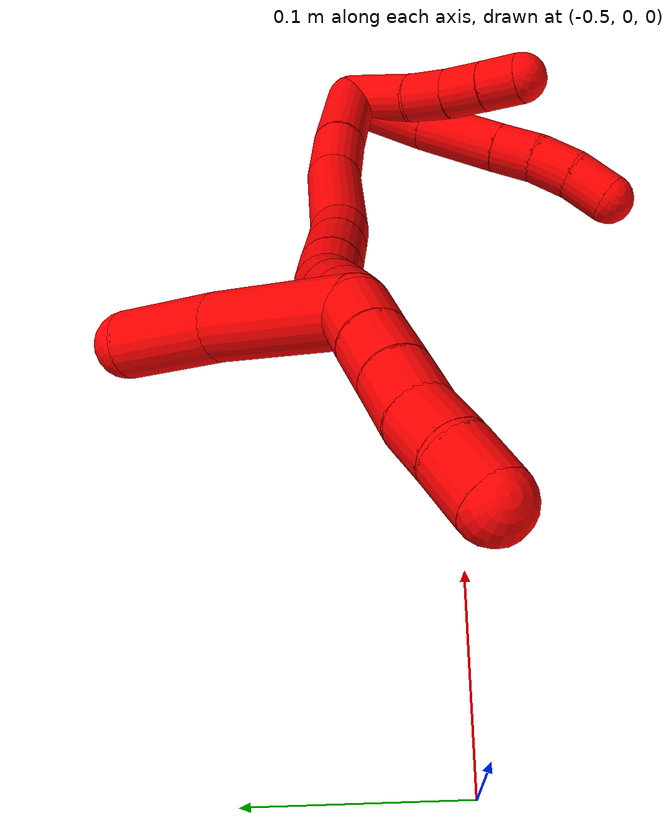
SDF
<sdf version="1.7">
 <world name="default">
  <model name="2">
   <static>0</static>
   <link name="2">
    <collision name="collision-cylinder-e_1_2_8">
     <pose>-0.009734 -0.018061 0.00874 1.12007 -0.451677 -0.286148</pose>
     <geometry><cylinder><radius>0.0125</radius><length>0.044602</length></cylinder></geometry>
     <surface>
      <friction><ode><mu>1.16</mu><mu2>1.16</mu2><slip1>0</slip1><slip2>0</slip2></ode></friction>
      <contact><ode><kp>1e+06</kp><kd>1</kd><max_vel>0</max_vel><min_depth>0.001</min_depth></ode></contact>
     </surface>
    </collision>
    <visual name="visual-cylinder-e_1_2_8">
     <pose>-0.009734 -0.018061 0.00874 1.12007 -0.451677 -0.286148</pose>
     <geometry><cylinder><radius>0.0125</radius><length>0.044602</length></cylinder></geometry>
     <material><ambient>1 0 0 1</ambient></material>
    </visual>
    <collision name="collision-cylinder-e_2_8_9">
     <pose>-0.028168 -0.052497 0.027318 1.02984 -0.427371 -0.244349</pose>
     <geometry><cylinder><radius>0.0125</radius><length>0.041982</length></cylinder></geometry>
     <surface>
      <friction><ode><mu>1.16</mu><mu2>1.16</mu2><slip1>0</slip1><slip2>0</slip2></ode></friction>
      <contact><ode><kp>1e+06</kp><kd>1</kd><max_vel>0</max_vel><min_depth>0.001</min_depth></ode></contact>
     </surface>
    </collision>
    <visual name="visual-cylinder-e_2_8_9">
     <pose>-0.028168 -0.052497 0.027318 1.02984 -0.427371 -0.244349</pose>
     <geometry><cylinder><radius>0.0125</radius><length>0.041982</length></cylinder></geometry>
     <material><ambient>1 0 0 1</ambient></material>
    </visual>
    <collision name="collision-cylinder-e_3_9_10">
     <pose>-0.040953 -0.077201 0.042034 1.0409 -0.400299 -0.231511</pose>
     <geometry><cylinder><radius>0.0125</radius><length>0.020961</length></cylinder></geometry>
     <surface>
      <friction><ode><mu>1.16</mu><mu2>1.16</mu2><slip1>0</slip1><slip2>0</slip2></ode></friction>
      <contact><ode><kp>1e+06</kp><kd>1</kd><max_vel>0</max_vel><min_depth>0.001</min_depth></ode></contact>
     </surface>
    </collision>
    <visual name="visual-cylinder-e_3_9_10">
     <pose>-0.040953 -0.077201 0.042034 1.0409 -0.400299 -0.231511</pose>
     <geometry><cylinder><radius>0.0125</radius><length>0.020961</length></cylinder></geometry>
     <material><ambient>1 0 0 1</ambient></material>
    </visual>
    <collision name="collision-cylinder-e_4_10_11">
     <pose>-0.050483 -0.093662 0.051038 1.10127 -0.538372 -0.335586</pose>
     <geometry><cylinder><radius>0.0125</radius><length>0.021243</length></cylinder></geometry>
     <surface>
      <friction><ode><mu>1.16</mu><mu2>1.16</mu2><slip1>0</slip1><slip2>0</slip2></ode></friction>
      <contact><ode><kp>1e+06</kp><kd>1</kd><max_vel>0</max_vel><min_depth>0.001</min_depth></ode></contact>
     </surface>
    </collision>
    <visual name="visual-cylinder-e_4_10_11">
     <pose>-0.050483 -0.093662 0.051038 1.10127 -0.538372 -0.335586</pose>
     <geometry><cylinder><radius>0.0125</radius><length>0.021243</length></cylinder></geometry>
     <material><ambient>1 0 0 1</ambient></material>
    </visual>
    <collision name="collision-cylinder-e_5_11_6">
     <pose>-0.062657 -0.109394 0.058239 1.18639 -0.687174 -0.473381</pose>
     <geometry><cylinder><radius>0.0125</radius><length>0.021211</length></cylinder></geometry>
     <surface>
      <friction><ode><mu>1.16</mu><mu2>1.16</mu2><slip1>0</slip1><slip2>0</slip2></ode></friction>
      <contact><ode><kp>1e+06</kp><kd>1</kd><max_vel>0</max_vel><min_depth>0.001</min_depth></ode></contact>
     </surface>
    </collision>
    <visual name="visual-cylinder-e_5_11_6">
     <pose>-0.062657 -0.109394 0.058239 1.18639 -0.687174 -0.473381</pose>
     <geometry><cylinder><radius>0.0125</radius><length>0.021211</length></cylinder></geometry>
     <material><ambient>1 0 0 1</ambient></material>
    </visual>
    <collision name="collision-cylinder-e_1_2_12">
     <pose>-0.004739 -0.012997 0.013399 0.770163 -0.248598 -0.101197</pose>
     <geometry><cylinder><radius>0.0125</radius><length>0.038518</length></cylinder></geometry>
     <surface>
      <friction><ode><mu>1.16</mu><mu2>1.16</mu2><slip1>0</slip1><slip2>0</slip2></ode></friction>
      <contact><ode><kp>1e+06</kp><kd>1</kd><max_vel>0</max_vel><min_depth>0.001</min_depth></ode></contact>
     </surface>
    </collision>
    <visual name="visual-cylinder-e_1_2_12">
     <pose>-0.004739 -0.012997 0.013399 0.770163 -0.248598 -0.101197</pose>
     <geometry><cylinder><radius>0.0125</radius><length>0.038518</length></cylinder></geometry>
     <material><ambient>1 0 0 1</ambient></material>
    </visual>
    <collision name="collision-cylinder-e_2_12_13">
     <pose>-0.010699 -0.033832 0.03396 0.830488 -0.114551 -0.050548</pose>
     <geometry><cylinder><radius>0.0125</radius><length>0.021375</length></cylinder></geometry>
     <surface>
      <friction><ode><mu>1.16</mu><mu2>1.16</mu2><slip1>0</slip1><slip2>0</slip2></ode></friction>
      <contact><ode><kp>1e+06</kp><kd>1</kd><max_vel>0</max_vel><min_depth>0.001</min_depth></ode></contact>
     </surface>
    </collision>
    <visual name="visual-cylinder-e_2_12_13">
     <pose>-0.010699 -0.033832 0.03396 0.830488 -0.114551 -0.050548</pose>
     <geometry><cylinder><radius>0.0125</radius><length>0.021375</length></cylinder></geometry>
     <material><ambient>1 0 0 1</ambient></material>
    </visual>
    <collision name="collision-cylinder-e_3_13_14">
     <pose>-0.012479 -0.048842 0.048141 0.79612 -0.055626 -0.023396</pose>
     <geometry><cylinder><radius>0.0125</radius><length>0.0201</length></cylinder></geometry>
     <surface>
      <friction><ode><mu>1.16</mu><mu2>1.16</mu2><slip1>0</slip1><slip2>0</slip2></ode></friction>
      <contact><ode><kp>1e+06</kp><kd>1</kd><max_vel>0</max_vel><min_depth>0.001</min_depth></ode></contact>
     </surface>
    </collision>
    <visual name="visual-cylinder-e_3_13_14">
     <pose>-0.012479 -0.048842 0.048141 0.79612 -0.055626 -0.023396</pose>
     <geometry><cylinder><radius>0.0125</radius><length>0.0201</length></cylinder></geometry>
     <material><ambient>1 0 0 1</ambient></material>
    </visual>
    <collision name="collision-cylinder-e_4_14_5">
     <pose>-0.013308 -0.06332 0.061987 0.819313 -0.027 -0.011724</pose>
     <geometry><cylinder><radius>0.0125</radius><length>0.020006</length></cylinder></geometry>
     <surface>
      <friction><ode><mu>1.16</mu><mu2>1.16</mu2><slip1>0</slip1><slip2>0</slip2></ode></friction>
      <contact><ode><kp>1e+06</kp><kd>1</kd><max_vel>0</max_vel><min_depth>0.001</min_depth></ode></contact>
     </surface>
    </collision>
    <visual name="visual-cylinder-e_4_14_5">
     <pose>-0.013308 -0.06332 0.061987 0.819313 -0.027 -0.011724</pose>
     <geometry><cylinder><radius>0.0125</radius><length>0.020006</length></cylinder></geometry>
     <material><ambient>1 0 0 1</ambient></material>
    </visual>
    <collision name="collision-cylinder-e_1_2_15">
     <pose>-0.022505 0.007185 0.019013 -0.361292 -0.836229 0.161941</pose>
     <geometry><cylinder><radius>0.0125</radius><length>0.060649</length></cylinder></geometry>
     <surface>
      <friction><ode><mu>1.16</mu><mu2>1.16</mu2><slip1>0</slip1><slip2>0</slip2></ode></friction>
      <contact><ode><kp>1e+06</kp><kd>1</kd><max_vel>0</max_vel><min_depth>0.001</min_depth></ode></contact>
     </surface>
    </collision>
    <visual name="visual-cylinder-e_1_2_15">
     <pose>-0.022505 0.007185 0.019013 -0.361292 -0.836229 0.161941</pose>
     <geometry><cylinder><radius>0.0125</radius><length>0.060649</length></cylinder></geometry>
     <material><ambient>1 0 0 1</ambient></material>
    </visual>
    <collision name="collision-cylinder-e_2_15_16">
     <pose>-0.058393 0.017528 0.047974 -0.307449 -0.908504 0.151036</pose>
     <geometry><cylinder><radius>0.0125</radius><length>0.033943</length></cylinder></geometry>
     <surface>
      <friction><ode><mu>1.16</mu><mu2>1.16</mu2><slip1>0</slip1><slip2>0</slip2></ode></friction>
      <contact><ode><kp>1e+06</kp><kd>1</kd><max_vel>0</max_vel><min_depth>0.001</min_depth></ode></contact>
     </surface>
    </collision>
    <visual name="visual-cylinder-e_2_15_16">
     <pose>-0.058393 0.017528 0.047974 -0.307449 -0.908504 0.151036</pose>
     <geometry><cylinder><radius>0.0125</radius><length>0.033943</length></cylinder></geometry>
     <material><ambient>1 0 0 1</ambient></material>
    </visual>
    <collision name="collision-cylinder-e_3_16_17">
     <pose>-0.093572 0.02374 0.079447 -0.140938 -0.786647 0.058562</pose>
     <geometry><cylinder><radius>0.0125</radius><length>0.061571</length></cylinder></geometry>
     <surface>
      <friction><ode><mu>1.16</mu><mu2>1.16</mu2><slip1>0</slip1><slip2>0</slip2></ode></friction>
      <contact><ode><kp>1e+06</kp><kd>1</kd><max_vel>0</max_vel><min_depth>0.001</min_depth></ode></contact>
     </surface>
    </collision>
    <visual name="visual-cylinder-e_3_16_17">
     <pose>-0.093572 0.02374 0.079447 -0.140938 -0.786647 0.058562</pose>
     <geometry><cylinder><radius>0.0125</radius><length>0.061571</length></cylinder></geometry>
     <material><ambient>1 0 0 1</ambient></material>
    </visual>
    <collision name="collision-cylinder-e_4_17_18">
     <pose>-0.122273 0.02933 0.109973 -0.274616 -0.636091 0.090919</pose>
     <geometry><cylinder><radius>0.0125</radius><length>0.023248</length></cylinder></geometry>
     <surface>
      <friction><ode><mu>1.16</mu><mu2>1.16</mu2><slip1>0</slip1><slip2>0</slip2></ode></friction>
      <contact><ode><kp>1e+06</kp><kd>1</kd><max_vel>0</max_vel><min_depth>0.001</min_depth></ode></contact>
     </surface>
    </collision>
    <visual name="visual-cylinder-e_4_17_18">
     <pose>-0.122273 0.02933 0.109973 -0.274616 -0.636091 0.090919</pose>
     <geometry><cylinder><radius>0.0125</radius><length>0.023248</length></cylinder></geometry>
     <material><ambient>1 0 0 1</ambient></material>
    </visual>
    <collision name="collision-cylinder-e_5_18_19">
     <pose>-0.138733 0.035654 0.132567 -0.271779 -0.595168 0.08382</pose>
     <geometry><cylinder><radius>0.0125</radius><length>0.034084</length></cylinder></geometry>
     <surface>
      <friction><ode><mu>1.16</mu><mu2>1.16</mu2><slip1>0</slip1><slip2>0</slip2></ode></friction>
      <contact><ode><kp>1e+06</kp><kd>1</kd><max_vel>0</max_vel><min_depth>0.001</min_depth></ode></contact>
     </surface>
    </collision>
    <visual name="visual-cylinder-e_5_18_19">
     <pose>-0.138733 0.035654 0.132567 -0.271779 -0.595168 0.08382</pose>
     <geometry><cylinder><radius>0.0125</radius><length>0.034084</length></cylinder></geometry>
     <material><ambient>1 0 0 1</ambient></material>
    </visual>
    <collision name="collision-cylinder-e_6_19_20">
     <pose>-0.155105 0.041882 0.154796 -0.275354 -0.649658 0.09325</pose>
     <geometry><cylinder><radius>0.0125</radius><length>0.022539</length></cylinder></geometry>
     <surface>
      <friction><ode><mu>1.16</mu><mu2>1.16</mu2><slip1>0</slip1><slip2>0</slip2></ode></friction>
      <contact><ode><kp>1e+06</kp><kd>1</kd><max_vel>0</max_vel><min_depth>0.001</min_depth></ode></contact>
     </surface>
    </collision>
    <visual name="visual-cylinder-e_6_19_20">
     <pose>-0.155105 0.041882 0.154796 -0.275354 -0.649658 0.09325</pose>
     <geometry><cylinder><radius>0.0125</radius><length>0.022539</length></cylinder></geometry>
     <material><ambient>1 0 0 1</ambient></material>
    </visual>
    <collision name="collision-cylinder-e_7_20_21">
     <pose>-0.166418 0.044751 0.17311 -0.044329 -0.434517 0.009787</pose>
     <geometry><cylinder><radius>0.0125</radius><length>0.02136</length></cylinder></geometry>
     <surface>
      <friction><ode><mu>1.16</mu><mu2>1.16</mu2><slip1>0</slip1><slip2>0</slip2></ode></friction>
      <contact><ode><kp>1e+06</kp><kd>1</kd><max_vel>0</max_vel><min_depth>0.001</min_depth></ode></contact>
     </surface>
    </collision>
    <visual name="visual-cylinder-e_7_20_21">
     <pose>-0.166418 0.044751 0.17311 -0.044329 -0.434517 0.009787</pose>
     <geometry><cylinder><radius>0.0125</radius><length>0.02136</length></cylinder></geometry>
     <material><ambient>1 0 0 1</ambient></material>
    </visual>
    <collision name="collision-cylinder-e_8_21_22">
     <pose>-0.175746 0.045405 0.192881 -0.022257 -0.446416 0.005052</pose>
     <geometry><cylinder><radius>0.0125</radius><length>0.022386</length></cylinder></geometry>
     <surface>
      <friction><ode><mu>1.16</mu><mu2>1.16</mu2><slip1>0</slip1><slip2>0</slip2></ode></friction>
      <contact><ode><kp>1e+06</kp><kd>1</kd><max_vel>0</max_vel><min_depth>0.001</min_depth></ode></contact>
     </surface>
    </collision>
    <visual name="visual-cylinder-e_8_21_22">
     <pose>-0.175746 0.045405 0.192881 -0.022257 -0.446416 0.005052</pose>
     <geometry><cylinder><radius>0.0125</radius><length>0.022386</length></cylinder></geometry>
     <material><ambient>1 0 0 1</ambient></material>
    </visual>
    <collision name="collision-cylinder-e_9_22_1">
     <pose>-0.18499 0.046 0.212064 -0.040686 -0.451556 0.009347</pose>
     <geometry><cylinder><radius>0.0125</radius><length>0.02022</length></cylinder></geometry>
     <surface>
      <friction><ode><mu>1.16</mu><mu2>1.16</mu2><slip1>0</slip1><slip2>0</slip2></ode></friction>
      <contact><ode><kp>1e+06</kp><kd>1</kd><max_vel>0</max_vel><min_depth>0.001</min_depth></ode></contact>
     </surface>
    </collision>
    <visual name="visual-cylinder-e_9_22_1">
     <pose>-0.18499 0.046 0.212064 -0.040686 -0.451556 0.009347</pose>
     <geometry><cylinder><radius>0.0125</radius><length>0.02022</length></cylinder></geometry>
     <material><ambient>1 0 0 1</ambient></material>
    </visual>
    <collision name="collision-cylinder-e_1_1_23">
     <pose>-0.186684 0.065607 0.198117 -2.44582 0.090309 -0.247924</pose>
     <geometry><cylinder><radius>0.0125</radius><length>0.06027</length></cylinder></geometry>
     <surface>
      <friction><ode><mu>1.16</mu><mu2>1.16</mu2><slip1>0</slip1><slip2>0</slip2></ode></friction>
      <contact><ode><kp>1e+06</kp><kd>1</kd><max_vel>0</max_vel><min_depth>0.001</min_depth></ode></contact>
     </surface>
    </collision>
    <visual name="visual-cylinder-e_1_1_23">
     <pose>-0.186684 0.065607 0.198117 -2.44582 0.090309 -0.247924</pose>
     <geometry><cylinder><radius>0.0125</radius><length>0.06027</length></cylinder></geometry>
     <material><ambient>1 0 0 1</ambient></material>
    </visual>
    <collision name="collision-cylinder-e_2_23_4">
     <pose>-0.184536 0.099738 0.161948 -2.29343 -0.028676 0.063499</pose>
     <geometry><cylinder><radius>0.0125</radius><length>0.03973</length></cylinder></geometry>
     <surface>
      <friction><ode><mu>1.16</mu><mu2>1.16</mu2><slip1>0</slip1><slip2>0</slip2></ode></friction>
      <contact><ode><kp>1e+06</kp><kd>1</kd><max_vel>0</max_vel><min_depth>0.001</min_depth></ode></contact>
     </surface>
    </collision>
    <visual name="visual-cylinder-e_2_23_4">
     <pose>-0.184536 0.099738 0.161948 -2.29343 -0.028676 0.063499</pose>
     <geometry><cylinder><radius>0.0125</radius><length>0.03973</length></cylinder></geometry>
     <material><ambient>1 0 0 1</ambient></material>
    </visual>
    <collision name="collision-cylinder-e_1_1_24">
     <pose>-0.196577 0.044939 0.22797 0.206934 -0.800226 -0.087775</pose>
     <geometry><cylinder><radius>0.0125</radius><length>0.02</length></cylinder></geometry>
     <surface>
      <friction><ode><mu>1.16</mu><mu2>1.16</mu2><slip1>0</slip1><slip2>0</slip2></ode></friction>
      <contact><ode><kp>1e+06</kp><kd>1</kd><max_vel>0</max_vel><min_depth>0.001</min_depth></ode></contact>
     </surface>
    </collision>
    <visual name="visual-cylinder-e_1_1_24">
     <pose>-0.196577 0.044939 0.22797 0.206934 -0.800226 -0.087775</pose>
     <geometry><cylinder><radius>0.0125</radius><length>0.02</length></cylinder></geometry>
     <material><ambient>1 0 0 1</ambient></material>
    </visual>
    <collision name="collision-cylinder-e_2_24_25">
     <pose>-0.211052 0.041577 0.241343 0.286395 -0.818323 -0.124884</pose>
     <geometry><cylinder><radius>0.0125</radius><length>0.02</length></cylinder></geometry>
     <surface>
      <friction><ode><mu>1.16</mu><mu2>1.16</mu2><slip1>0</slip1><slip2>0</slip2></ode></friction>
      <contact><ode><kp>1e+06</kp><kd>1</kd><max_vel>0</max_vel><min_depth>0.001</min_depth></ode></contact>
     </surface>
    </collision>
    <visual name="visual-cylinder-e_2_24_25">
     <pose>-0.211052 0.041577 0.241343 0.286395 -0.818323 -0.124884</pose>
     <geometry><cylinder><radius>0.0125</radius><length>0.02</length></cylinder></geometry>
     <material><ambient>1 0 0 1</ambient></material>
    </visual>
    <collision name="collision-cylinder-e_3_25_26">
     <pose>-0.2259 0.037542 0.254111 0.326573 -0.855423 -0.149926</pose>
     <geometry><cylinder><radius>0.0125</radius><length>0.02</length></cylinder></geometry>
     <surface>
      <friction><ode><mu>1.16</mu><mu2>1.16</mu2><slip1>0</slip1><slip2>0</slip2></ode></friction>
      <contact><ode><kp>1e+06</kp><kd>1</kd><max_vel>0</max_vel><min_depth>0.001</min_depth></ode></contact>
     </surface>
    </collision>
    <visual name="visual-cylinder-e_3_25_26">
     <pose>-0.2259 0.037542 0.254111 0.326573 -0.855423 -0.149926</pose>
     <geometry><cylinder><radius>0.0125</radius><length>0.02</length></cylinder></geometry>
     <material><ambient>1 0 0 1</ambient></material>
    </visual>
    <collision name="collision-cylinder-e_4_26_27">
     <pose>-0.240051 0.032523 0.267245 0.3985 -0.721149 -0.151985</pose>
     <geometry><cylinder><radius>0.0125</radius><length>0.02</length></cylinder></geometry>
     <surface>
      <friction><ode><mu>1.16</mu><mu2>1.16</mu2><slip1>0</slip1><slip2>0</slip2></ode></friction>
      <contact><ode><kp>1e+06</kp><kd>1</kd><max_vel>0</max_vel><min_depth>0.001</min_depth></ode></contact>
     </surface>
    </collision>
    <visual name="visual-cylinder-e_4_26_27">
     <pose>-0.240051 0.032523 0.267245 0.3985 -0.721149 -0.151985</pose>
     <geometry><cylinder><radius>0.0125</radius><length>0.02</length></cylinder></geometry>
     <material><ambient>1 0 0 1</ambient></material>
    </visual>
    <collision name="collision-cylinder-e_5_27_3">
     <pose>-0.254007 0.025816 0.279784 0.593895 -0.826078 -0.266613</pose>
     <geometry><cylinder><radius>0.0125</radius><length>0.02</length></cylinder></geometry>
     <surface>
      <friction><ode><mu>1.16</mu><mu2>1.16</mu2><slip1>0</slip1><slip2>0</slip2></ode></friction>
      <contact><ode><kp>1e+06</kp><kd>1</kd><max_vel>0</max_vel><min_depth>0.001</min_depth></ode></contact>
     </surface>
    </collision>
    <visual name="visual-cylinder-e_5_27_3">
     <pose>-0.254007 0.025816 0.279784 0.593895 -0.826078 -0.266613</pose>
     <geometry><cylinder><radius>0.0125</radius><length>0.02</length></cylinder></geometry>
     <material><ambient>1 0 0 1</ambient></material>
    </visual>
    <collision name="collision-sphere-3">
     <pose>-0.261359 0.022024 0.285401 0 -0 0</pose>
     <geometry><sphere><radius>0.0125</radius></sphere></geometry>
     <surface>
      <friction><ode><mu>1.16</mu><mu2>1.16</mu2><slip1>0</slip1><slip2>0</slip2></ode></friction>
      <contact><ode><kp>1e+06</kp><kd>1</kd><max_vel>0</max_vel><min_depth>0.001</min_depth></ode></contact>
     </surface>
    </collision>
    <visual name="visual-sphere-3">
     <pose>-0.261359 0.022024 0.285401 0 -0 0</pose>
     <geometry><sphere><radius>0.0125</radius></sphere></geometry>
     <material><ambient>1 0 0 1</ambient></material>
    </visual>
    <collision name="collision-sphere-27">
     <pose>-0.246654 0.029609 0.274167 0 -0 0</pose>
     <geometry><sphere><radius>0.0125</radius></sphere></geometry>
     <surface>
      <friction><ode><mu>1.16</mu><mu2>1.16</mu2><slip1>0</slip1><slip2>0</slip2></ode></friction>
      <contact><ode><kp>1e+06</kp><kd>1</kd><max_vel>0</max_vel><min_depth>0.001</min_depth></ode></contact>
     </surface>
    </collision>
    <visual name="visual-sphere-27">
     <pose>-0.246654 0.029609 0.274167 0 -0 0</pose>
     <geometry><sphere><radius>0.0125</radius></sphere></geometry>
     <material><ambient>1 0 0 1</ambient></material>
    </visual>
    <collision name="collision-sphere-26">
     <pose>-0.233449 0.035438 0.260323 0 -0 0</pose>
     <geometry><sphere><radius>0.0125</radius></sphere></geometry>
     <surface>
      <friction><ode><mu>1.16</mu><mu2>1.16</mu2><slip1>0</slip1><slip2>0</slip2></ode></friction>
      <contact><ode><kp>1e+06</kp><kd>1</kd><max_vel>0</max_vel><min_depth>0.001</min_depth></ode></contact>
     </surface>
    </collision>
    <visual name="visual-sphere-26">
     <pose>-0.233449 0.035438 0.260323 0 -0 0</pose>
     <geometry><sphere><radius>0.0125</radius></sphere></geometry>
     <material><ambient>1 0 0 1</ambient></material>
    </visual>
    <collision name="collision-sphere-25">
     <pose>-0.218352 0.039646 0.247899 0 -0 0</pose>
     <geometry><sphere><radius>0.0125</radius></sphere></geometry>
     <surface>
      <friction><ode><mu>1.16</mu><mu2>1.16</mu2><slip1>0</slip1><slip2>0</slip2></ode></friction>
      <contact><ode><kp>1e+06</kp><kd>1</kd><max_vel>0</max_vel><min_depth>0.001</min_depth></ode></contact>
     </surface>
    </collision>
    <visual name="visual-sphere-25">
     <pose>-0.218352 0.039646 0.247899 0 -0 0</pose>
     <geometry><sphere><radius>0.0125</radius></sphere></geometry>
     <material><ambient>1 0 0 1</ambient></material>
    </visual>
    <collision name="collision-sphere-24">
     <pose>-0.203752 0.043507 0.234786 0 -0 0</pose>
     <geometry><sphere><radius>0.0125</radius></sphere></geometry>
     <surface>
      <friction><ode><mu>1.16</mu><mu2>1.16</mu2><slip1>0</slip1><slip2>0</slip2></ode></friction>
      <contact><ode><kp>1e+06</kp><kd>1</kd><max_vel>0</max_vel><min_depth>0.001</min_depth></ode></contact>
     </surface>
    </collision>
    <visual name="visual-sphere-24">
     <pose>-0.203752 0.043507 0.234786 0 -0 0</pose>
     <geometry><sphere><radius>0.0125</radius></sphere></geometry>
     <material><ambient>1 0 0 1</ambient></material>
    </visual>
    <collision name="collision-sphere-4">
     <pose>-0.185105 0.114632 0.148816 0 -0 0</pose>
     <geometry><sphere><radius>0.0125</radius></sphere></geometry>
     <surface>
      <friction><ode><mu>1.16</mu><mu2>1.16</mu2><slip1>0</slip1><slip2>0</slip2></ode></friction>
      <contact><ode><kp>1e+06</kp><kd>1</kd><max_vel>0</max_vel><min_depth>0.001</min_depth></ode></contact>
     </surface>
    </collision>
    <visual name="visual-sphere-4">
     <pose>-0.185105 0.114632 0.148816 0 -0 0</pose>
     <geometry><sphere><radius>0.0125</radius></sphere></geometry>
     <material><ambient>1 0 0 1</ambient></material>
    </visual>
    <collision name="collision-sphere-23">
     <pose>-0.183966 0.084844 0.175081 0 -0 0</pose>
     <geometry><sphere><radius>0.0125</radius></sphere></geometry>
     <surface>
      <friction><ode><mu>1.16</mu><mu2>1.16</mu2><slip1>0</slip1><slip2>0</slip2></ode></friction>
      <contact><ode><kp>1e+06</kp><kd>1</kd><max_vel>0</max_vel><min_depth>0.001</min_depth></ode></contact>
     </surface>
    </collision>
    <visual name="visual-sphere-23">
     <pose>-0.183966 0.084844 0.175081 0 -0 0</pose>
     <geometry><sphere><radius>0.0125</radius></sphere></geometry>
     <material><ambient>1 0 0 1</ambient></material>
    </visual>
    <collision name="collision-sphere-1">
     <pose>-0.189402 0.04637 0.221153 0 -0 0</pose>
     <geometry><sphere><radius>0.0125</radius></sphere></geometry>
     <surface>
      <friction><ode><mu>1.16</mu><mu2>1.16</mu2><slip1>0</slip1><slip2>0</slip2></ode></friction>
      <contact><ode><kp>1e+06</kp><kd>1</kd><max_vel>0</max_vel><min_depth>0.001</min_depth></ode></contact>
     </surface>
    </collision>
    <visual name="visual-sphere-1">
     <pose>-0.189402 0.04637 0.221153 0 -0 0</pose>
     <geometry><sphere><radius>0.0125</radius></sphere></geometry>
     <material><ambient>1 0 0 1</ambient></material>
    </visual>
    <collision name="collision-sphere-22">
     <pose>-0.180578 0.04563 0.202975 0 -0 0</pose>
     <geometry><sphere><radius>0.0125</radius></sphere></geometry>
     <surface>
      <friction><ode><mu>1.16</mu><mu2>1.16</mu2><slip1>0</slip1><slip2>0</slip2></ode></friction>
      <contact><ode><kp>1e+06</kp><kd>1</kd><max_vel>0</max_vel><min_depth>0.001</min_depth></ode></contact>
     </surface>
    </collision>
    <visual name="visual-sphere-22">
     <pose>-0.180578 0.04563 0.202975 0 -0 0</pose>
     <geometry><sphere><radius>0.0125</radius></sphere></geometry>
     <material><ambient>1 0 0 1</ambient></material>
    </visual>
    <collision name="collision-sphere-21">
     <pose>-0.170914 0.04518 0.182788 0 -0 0</pose>
     <geometry><sphere><radius>0.0125</radius></sphere></geometry>
     <surface>
      <friction><ode><mu>1.16</mu><mu2>1.16</mu2><slip1>0</slip1><slip2>0</slip2></ode></friction>
      <contact><ode><kp>1e+06</kp><kd>1</kd><max_vel>0</max_vel><min_depth>0.001</min_depth></ode></contact>
     </surface>
    </collision>
    <visual name="visual-sphere-21">
     <pose>-0.170914 0.04518 0.182788 0 -0 0</pose>
     <geometry><sphere><radius>0.0125</radius></sphere></geometry>
     <material><ambient>1 0 0 1</ambient></material>
    </visual>
    <collision name="collision-sphere-6">
     <pose>-0.069385 -0.116995 0.061314 0 -0 0</pose>
     <geometry><sphere><radius>0.0125</radius></sphere></geometry>
     <surface>
      <friction><ode><mu>1.16</mu><mu2>1.16</mu2><slip1>0</slip1><slip2>0</slip2></ode></friction>
      <contact><ode><kp>1e+06</kp><kd>1</kd><max_vel>0</max_vel><min_depth>0.001</min_depth></ode></contact>
     </surface>
    </collision>
    <visual name="visual-sphere-6">
     <pose>-0.069385 -0.116995 0.061314 0 -0 0</pose>
     <geometry><sphere><radius>0.0125</radius></sphere></geometry>
     <material><ambient>1 0 0 1</ambient></material>
    </visual>
    <collision name="collision-sphere-11">
     <pose>-0.055929 -0.101794 0.055165 0 -0 0</pose>
     <geometry><sphere><radius>0.0125</radius></sphere></geometry>
     <surface>
      <friction><ode><mu>1.16</mu><mu2>1.16</mu2><slip1>0</slip1><slip2>0</slip2></ode></friction>
      <contact><ode><kp>1e+06</kp><kd>1</kd><max_vel>0</max_vel><min_depth>0.001</min_depth></ode></contact>
     </surface>
    </collision>
    <visual name="visual-sphere-11">
     <pose>-0.055929 -0.101794 0.055165 0 -0 0</pose>
     <geometry><sphere><radius>0.0125</radius></sphere></geometry>
     <material><ambient>1 0 0 1</ambient></material>
    </visual>
    <collision name="collision-sphere-10">
     <pose>-0.045037 -0.085529 0.046912 0 -0 0</pose>
     <geometry><sphere><radius>0.0125</radius></sphere></geometry>
     <surface>
      <friction><ode><mu>1.16</mu><mu2>1.16</mu2><slip1>0</slip1><slip2>0</slip2></ode></friction>
      <contact><ode><kp>1e+06</kp><kd>1</kd><max_vel>0</max_vel><min_depth>0.001</min_depth></ode></contact>
     </surface>
    </collision>
    <visual name="visual-sphere-10">
     <pose>-0.045037 -0.085529 0.046912 0 -0 0</pose>
     <geometry><sphere><radius>0.0125</radius></sphere></geometry>
     <material><ambient>1 0 0 1</ambient></material>
    </visual>
    <collision name="collision-sphere-9">
     <pose>-0.036868 -0.068872 0.037155 0 -0 0</pose>
     <geometry><sphere><radius>0.0125</radius></sphere></geometry>
     <surface>
      <friction><ode><mu>1.16</mu><mu2>1.16</mu2><slip1>0</slip1><slip2>0</slip2></ode></friction>
      <contact><ode><kp>1e+06</kp><kd>1</kd><max_vel>0</max_vel><min_depth>0.001</min_depth></ode></contact>
     </surface>
    </collision>
    <visual name="visual-sphere-9">
     <pose>-0.036868 -0.068872 0.037155 0 -0 0</pose>
     <geometry><sphere><radius>0.0125</radius></sphere></geometry>
     <material><ambient>1 0 0 1</ambient></material>
    </visual>
    <collision name="collision-sphere-2">
     <geometry><sphere><radius>0.0125</radius></sphere></geometry>
     <surface>
      <friction><ode><mu>1.16</mu><mu2>1.16</mu2><slip1>0</slip1><slip2>0</slip2></ode></friction>
      <contact><ode><kp>1e+06</kp><kd>1</kd><max_vel>0</max_vel><min_depth>0.001</min_depth></ode></contact>
     </surface>
    </collision>
    <visual name="visual-sphere-2">
     <geometry><sphere><radius>0.0125</radius></sphere></geometry>
     <material><ambient>1 0 0 1</ambient></material>
    </visual>
    <collision name="collision-sphere-19">
     <pose>-0.148288 0.039442 0.14616 0 -0 0</pose>
     <geometry><sphere><radius>0.0125</radius></sphere></geometry>
     <surface>
      <friction><ode><mu>1.16</mu><mu2>1.16</mu2><slip1>0</slip1><slip2>0</slip2></ode></friction>
      <contact><ode><kp>1e+06</kp><kd>1</kd><max_vel>0</max_vel><min_depth>0.001</min_depth></ode></contact>
     </surface>
    </collision>
    <visual name="visual-sphere-19">
     <pose>-0.148288 0.039442 0.14616 0 -0 0</pose>
     <geometry><sphere><radius>0.0125</radius></sphere></geometry>
     <material><ambient>1 0 0 1</ambient></material>
    </visual>
    <collision name="collision-sphere-8">
     <pose>-0.019468 -0.036121 0.017481 0 -0 0</pose>
     <geometry><sphere><radius>0.0125</radius></sphere></geometry>
     <surface>
      <friction><ode><mu>1.16</mu><mu2>1.16</mu2><slip1>0</slip1><slip2>0</slip2></ode></friction>
      <contact><ode><kp>1e+06</kp><kd>1</kd><max_vel>0</max_vel><min_depth>0.001</min_depth></ode></contact>
     </surface>
    </collision>
    <visual name="visual-sphere-8">
     <pose>-0.019468 -0.036121 0.017481 0 -0 0</pose>
     <geometry><sphere><radius>0.0125</radius></sphere></geometry>
     <material><ambient>1 0 0 1</ambient></material>
    </visual>
    <collision name="collision-sphere-12">
     <pose>-0.009477 -0.025994 0.026798 0 -0 0</pose>
     <geometry><sphere><radius>0.0125</radius></sphere></geometry>
     <surface>
      <friction><ode><mu>1.16</mu><mu2>1.16</mu2><slip1>0</slip1><slip2>0</slip2></ode></friction>
      <contact><ode><kp>1e+06</kp><kd>1</kd><max_vel>0</max_vel><min_depth>0.001</min_depth></ode></contact>
     </surface>
    </collision>
    <visual name="visual-sphere-12">
     <pose>-0.009477 -0.025994 0.026798 0 -0 0</pose>
     <geometry><sphere><radius>0.0125</radius></sphere></geometry>
     <material><ambient>1 0 0 1</ambient></material>
    </visual>
    <collision name="collision-sphere-13">
     <pose>-0.01192 -0.041671 0.041122 0 -0 0</pose>
     <geometry><sphere><radius>0.0125</radius></sphere></geometry>
     <surface>
      <friction><ode><mu>1.16</mu><mu2>1.16</mu2><slip1>0</slip1><slip2>0</slip2></ode></friction>
      <contact><ode><kp>1e+06</kp><kd>1</kd><max_vel>0</max_vel><min_depth>0.001</min_depth></ode></contact>
     </surface>
    </collision>
    <visual name="visual-sphere-13">
     <pose>-0.01192 -0.041671 0.041122 0 -0 0</pose>
     <geometry><sphere><radius>0.0125</radius></sphere></geometry>
     <material><ambient>1 0 0 1</ambient></material>
    </visual>
    <collision name="collision-sphere-14">
     <pose>-0.013038 -0.056014 0.05516 0 -0 0</pose>
     <geometry><sphere><radius>0.0125</radius></sphere></geometry>
     <surface>
      <friction><ode><mu>1.16</mu><mu2>1.16</mu2><slip1>0</slip1><slip2>0</slip2></ode></friction>
      <contact><ode><kp>1e+06</kp><kd>1</kd><max_vel>0</max_vel><min_depth>0.001</min_depth></ode></contact>
     </surface>
    </collision>
    <visual name="visual-sphere-14">
     <pose>-0.013038 -0.056014 0.05516 0 -0 0</pose>
     <geometry><sphere><radius>0.0125</radius></sphere></geometry>
     <material><ambient>1 0 0 1</ambient></material>
    </visual>
    <collision name="collision-sphere-5">
     <pose>-0.013578 -0.070626 0.068814 0 -0 0</pose>
     <geometry><sphere><radius>0.0125</radius></sphere></geometry>
     <surface>
      <friction><ode><mu>1.16</mu><mu2>1.16</mu2><slip1>0</slip1><slip2>0</slip2></ode></friction>
      <contact><ode><kp>1e+06</kp><kd>1</kd><max_vel>0</max_vel><min_depth>0.001</min_depth></ode></contact>
     </surface>
    </collision>
    <visual name="visual-sphere-5">
     <pose>-0.013578 -0.070626 0.068814 0 -0 0</pose>
     <geometry><sphere><radius>0.0125</radius></sphere></geometry>
     <material><ambient>1 0 0 1</ambient></material>
    </visual>
    <collision name="collision-sphere-15">
     <pose>-0.045009 0.01437 0.038027 0 -0 0</pose>
     <geometry><sphere><radius>0.0125</radius></sphere></geometry>
     <surface>
      <friction><ode><mu>1.16</mu><mu2>1.16</mu2><slip1>0</slip1><slip2>0</slip2></ode></friction>
      <contact><ode><kp>1e+06</kp><kd>1</kd><max_vel>0</max_vel><min_depth>0.001</min_depth></ode></contact>
     </surface>
    </collision>
    <visual name="visual-sphere-15">
     <pose>-0.045009 0.01437 0.038027 0 -0 0</pose>
     <geometry><sphere><radius>0.0125</radius></sphere></geometry>
     <material><ambient>1 0 0 1</ambient></material>
    </visual>
    <collision name="collision-sphere-16">
     <pose>-0.071776 0.020686 0.057921 0 -0 0</pose>
     <geometry><sphere><radius>0.0125</radius></sphere></geometry>
     <surface>
      <friction><ode><mu>1.16</mu><mu2>1.16</mu2><slip1>0</slip1><slip2>0</slip2></ode></friction>
      <contact><ode><kp>1e+06</kp><kd>1</kd><max_vel>0</max_vel><min_depth>0.001</min_depth></ode></contact>
     </surface>
    </collision>
    <visual name="visual-sphere-16">
     <pose>-0.071776 0.020686 0.057921 0 -0 0</pose>
     <geometry><sphere><radius>0.0125</radius></sphere></geometry>
     <material><ambient>1 0 0 1</ambient></material>
    </visual>
    <collision name="collision-sphere-17">
     <pose>-0.115368 0.026794 0.100972 0 -0 0</pose>
     <geometry><sphere><radius>0.0125</radius></sphere></geometry>
     <surface>
      <friction><ode><mu>1.16</mu><mu2>1.16</mu2><slip1>0</slip1><slip2>0</slip2></ode></friction>
      <contact><ode><kp>1e+06</kp><kd>1</kd><max_vel>0</max_vel><min_depth>0.001</min_depth></ode></contact>
     </surface>
    </collision>
    <visual name="visual-sphere-17">
     <pose>-0.115368 0.026794 0.100972 0 -0 0</pose>
     <geometry><sphere><radius>0.0125</radius></sphere></geometry>
     <material><ambient>1 0 0 1</ambient></material>
    </visual>
    <collision name="collision-sphere-18">
     <pose>-0.129179 0.031866 0.118973 0 -0 0</pose>
     <geometry><sphere><radius>0.0125</radius></sphere></geometry>
     <surface>
      <friction><ode><mu>1.16</mu><mu2>1.16</mu2><slip1>0</slip1><slip2>0</slip2></ode></friction>
      <contact><ode><kp>1e+06</kp><kd>1</kd><max_vel>0</max_vel><min_depth>0.001</min_depth></ode></contact>
     </surface>
    </collision>
    <visual name="visual-sphere-18">
     <pose>-0.129179 0.031866 0.118973 0 -0 0</pose>
     <geometry><sphere><radius>0.0125</radius></sphere></geometry>
     <material><ambient>1 0 0 1</ambient></material>
    </visual>
    <collision name="collision-sphere-20">
     <pose>-0.161922 0.044322 0.163432 0 -0 0</pose>
     <geometry><sphere><radius>0.0125</radius></sphere></geometry>
     <surface>
      <friction><ode><mu>1.16</mu><mu2>1.16</mu2><slip1>0</slip1><slip2>0</slip2></ode></friction>
      <contact><ode><kp>1e+06</kp><kd>1</kd><max_vel>0</max_vel><min_depth>0.001</min_depth></ode></contact>
     </surface>
    </collision>
    <visual name="visual-sphere-20">
     <pose>-0.161922 0.044322 0.163432 0 -0 0</pose>
     <geometry><sphere><radius>0.0125</radius></sphere></geometry>
     <material><ambient>1 0 0 1</ambient></material>
    </visual>
    <inertial>
     <pose>-0.104459 0.009854 0.110015 0 -0 0</pose>
     <mass>0.75</mass>
     <inertia><ixx>7e-05</ixx><ixy>0</ixy><ixz>0</ixz><iyy>5.2e-05</iyy><iyz>0</iyz><izz>8.2e-05</izz></inertia>
    </inertial>
   </link>
   <pose>-0.142897 0.047092 0.011366 0.255393 -0.189827 -0.027413</pose>
  </model>
 </world>
</sdf>
